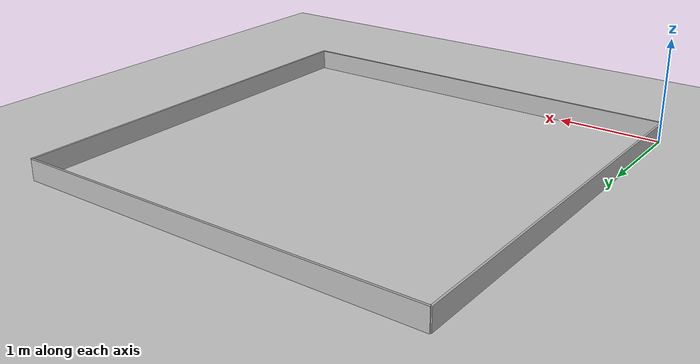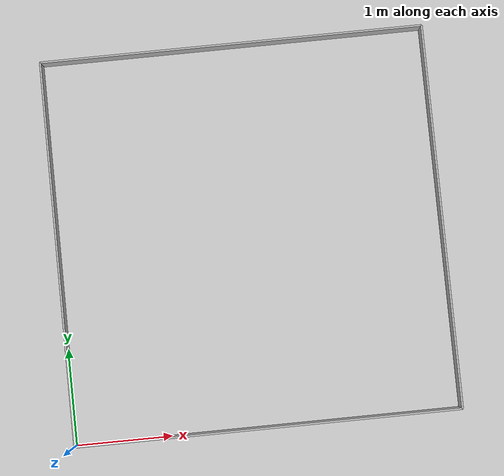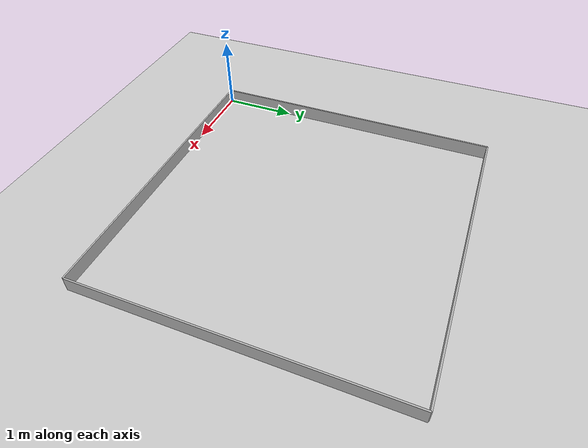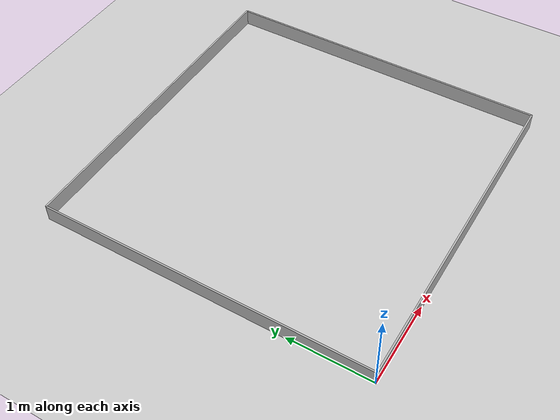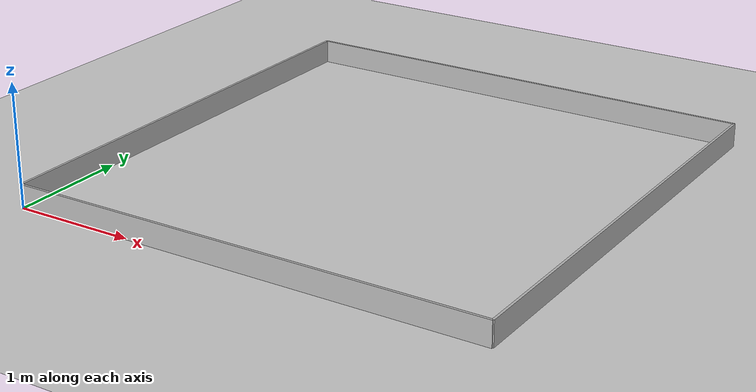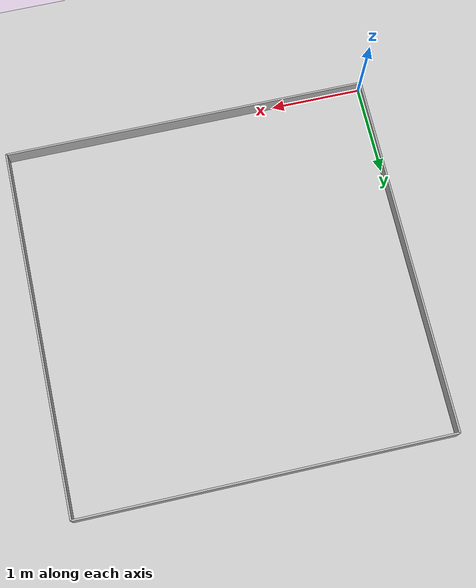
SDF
<sdf version="1.6">
  <world name="default">

    <include>
      <uri>model://ground_plane</uri>
    </include>

    <include>
      <uri>model://sun</uri>
    </include>

    <!-- North Wall -->
    <model name="wall_north">
      <static>true</static>
      <link name="link">
        <collision name="collision">
          <geometry>
            <box><size>4 0.02 0.2</size></box>
          </geometry>
        </collision>
        <visual name="visual">
          <geometry>
            <box><size>4 0.02 0.2</size></box>
          </geometry>
        </visual>
      </link>
      <pose>2 4 0.1 0 0 0</pose>
    </model>

    <!-- South Wall -->
    <model name="wall_south">
      <static>true</static>
      <link name="link">
        <collision name="collision">
          <geometry>
            <box><size>4 0.02 0.2</size></box>
          </geometry>
        </collision>
        <visual name="visual">
          <geometry>
            <box><size>4 0.02 0.2</size></box>
          </geometry>
        </visual>
      </link>
      <pose>2 0 0.1 0 0 0</pose>
    </model>

    <!-- East Wall -->
    <model name="wall_east">
      <static>true</static>
      <link name="link">
        <collision name="collision">
          <geometry>
            <box><size>4 0.02 0.2</size></box>
          </geometry>
        </collision>
        <visual name="visual">
          <geometry>
            <box><size>4 0.02 0.2</size></box>
          </geometry>
        </visual>
      </link>
      <pose>0 2 0.1 0 0 1.57</pose>
    </model>

    <!-- West Wall -->
    <model name="wall_west">
      <static>true</static>
      <link name="link">
        <collision name="collision">
          <geometry>
            <box><size>4 0.02 0.2</size></box>
          </geometry>
        </collision>
        <visual name="visual">
          <geometry>
            <box><size>4 0.02 0.2</size></box>
          </geometry>
        </visual>
      </link>
      <pose>4 2 0.1 0 0 1.57</pose>
    </model>

  </world>
</sdf>
